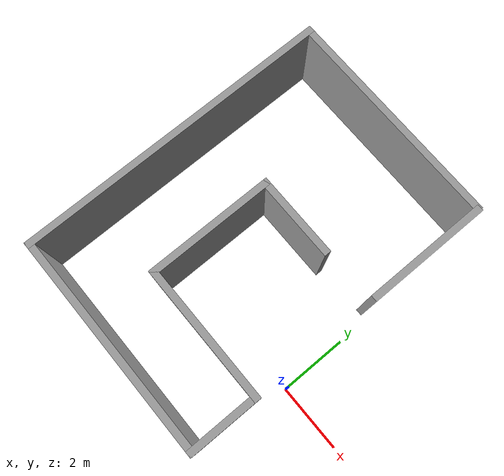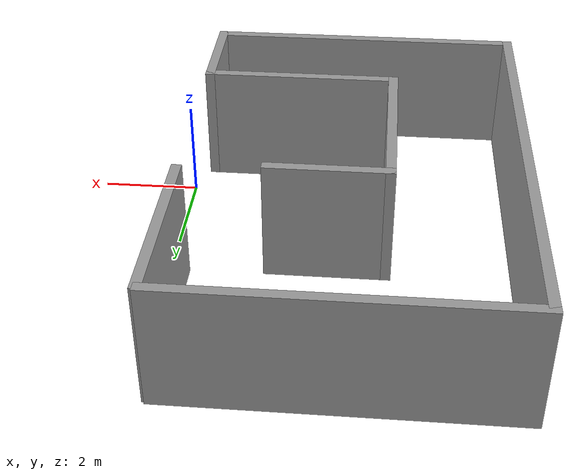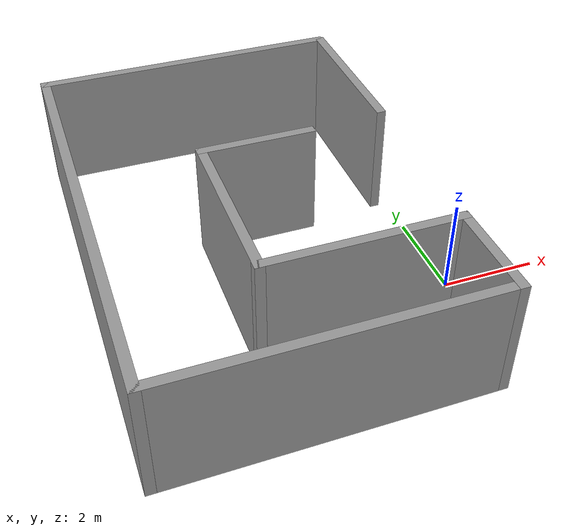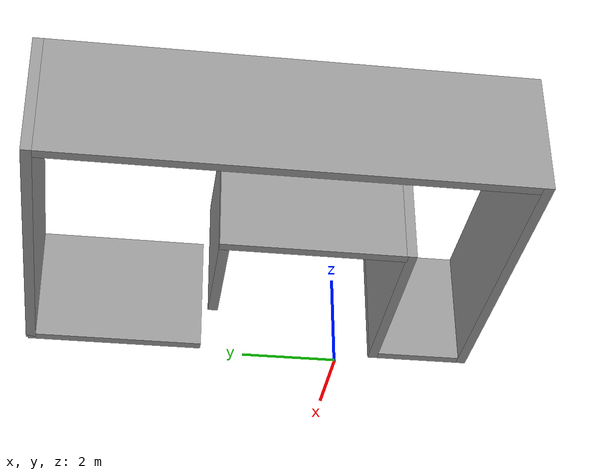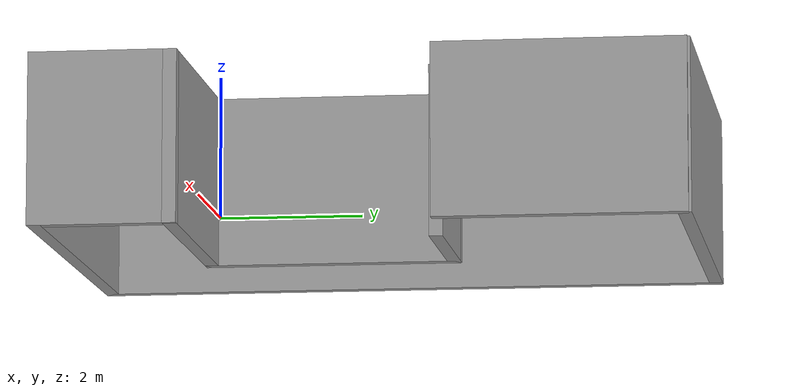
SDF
<?xml version='1.0'?>
<sdf version='1.4'>
  <model name='my_building_plan'>
    <link name='Wall_10'>
      <collision name='Wall_10_Collision'>
        <geometry>
          <box>
            <size>3.80055 0.2 2.5</size>
          </box>
        </geometry>
        <pose>0 0 1.25 0 -0 0</pose>
      </collision>
      <visual name='Wall_10_Visual'>
        <pose>0 0 1.25 0 -0 0</pose>
        <geometry>
          <box>
            <size>3.80055 0.2 2.5</size>
          </box>
        </geometry>
        <material>
          <script>
            <uri>file://media/materials/scripts/gazebo.material</uri>
            <name>Gazebo/Grey</name>
          </script>
        </material>
      </visual>
      <velocity_decay>
        <linear>0</linear>
        <angular>0</angular>
      </velocity_decay>
      <pose>-4.25321 1.01532 0 0 -0 1.5708</pose>
    </link>
    <link name='Wall_11'>
      <collision name='Wall_11_Collision'>
        <geometry>
          <box>
            <size>2.50597 0.2 2.5</size>
          </box>
        </geometry>
        <pose>0 0 1.25 0 -0 0</pose>
      </collision>
      <visual name='Wall_11_Visual'>
        <pose>0 0 1.25 0 -0 0</pose>
        <geometry>
          <box>
            <size>2.50597 0.2 2.5</size>
          </box>
        </geometry>
        <material>
          <script>
            <uri>file://media/materials/scripts/gazebo.material</uri>
            <name>Gazebo/Grey</name>
          </script>
        </material>
      </visual>
      <velocity_decay>
        <linear>0</linear>
        <angular>0</angular>
      </velocity_decay>
      <pose>-3.10023 2.81559 0 0 -0 0</pose>
    </link>
    <link name='Wall_2'>
      <collision name='Wall_2_Collision'>
        <geometry>
          <box>
            <size>3.62355 0.2 2.5</size>
          </box>
        </geometry>
        <pose>0 0 1.25 0 -0 0</pose>
      </collision>
      <visual name='Wall_2_Visual'>
        <pose>0 0 1.25 0 -0 0</pose>
        <geometry>
          <box>
            <size>3.62355 0.2 2.5</size>
          </box>
        </geometry>
        <material>
          <script>
            <uri>file://media/materials/scripts/gazebo.material</uri>
            <name>Gazebo/Grey</name>
          </script>
        </material>
      </visual>
      <velocity_decay>
        <linear>0</linear>
        <angular>0</angular>
      </velocity_decay>
      <pose>-0.280335 4.74515 0 0 -0 1.5708</pose>
    </link>
    <link name='Wall_5'>
      <collision name='Wall_5_Collision'>
        <geometry>
          <box>
            <size>6.67289 0.2 2.5</size>
          </box>
        </geometry>
        <pose>0 0 1.25 0 -0 0</pose>
      </collision>
      <visual name='Wall_5_Visual'>
        <pose>0 0 1.25 0 -0 0</pose>
        <geometry>
          <box>
            <size>6.67289 0.2 2.5</size>
          </box>
        </geometry>
        <material>
          <script>
            <uri>file://media/materials/scripts/gazebo.material</uri>
            <name>Gazebo/Grey</name>
          </script>
        </material>
      </visual>
      <velocity_decay>
        <linear>0</linear>
        <angular>0</angular>
      </velocity_decay>
      <pose>-3.56547 6.49705 0 0 -0 3.14159</pose>
    </link>
    <link name='Wall_6'>
      <collision name='Wall_6_Collision'>
        <geometry>
          <box>
            <size>9.42387 0.2 2.5</size>
          </box>
        </geometry>
        <pose>0 0 1.25 0 -0 0</pose>
      </collision>
      <visual name='Wall_6_Visual'>
        <pose>0 0 1.25 0 -0 0</pose>
        <geometry>
          <box>
            <size>9.42387 0.2 2.5</size>
          </box>
        </geometry>
        <material>
          <script>
            <uri>file://media/materials/scripts/gazebo.material</uri>
            <name>Gazebo/Grey</name>
          </script>
        </material>
      </visual>
      <velocity_decay>
        <linear>0</linear>
        <angular>0</angular>
      </velocity_decay>
      <pose>-6.80192 1.88511 0 0 0 -1.5708</pose>
    </link>
    <link name='Wall_7'>
      <collision name='Wall_7_Collision'>
        <geometry>
          <box>
            <size>6.67289 0.2 2.5</size>
          </box>
        </geometry>
        <pose>0 0 1.25 0 -0 0</pose>
      </collision>
      <visual name='Wall_7_Visual'>
        <pose>0 0 1.25 0 -0 0</pose>
        <geometry>
          <box>
            <size>6.67289 0.2 2.5</size>
          </box>
        </geometry>
        <material>
          <script>
            <uri>file://media/materials/scripts/gazebo.material</uri>
            <name>Gazebo/Grey</name>
          </script>
        </material>
      </visual>
      <velocity_decay>
        <linear>0</linear>
        <angular>0</angular>
      </velocity_decay>
      <pose>-3.56547 -2.72682 0 0 -0 0</pose>
    </link>
    //! if (false) {
    <link name='Wall_8'>
      <collision name='Wall_8_Collision'>
        <geometry>
          <box>
            <size>2.14187 0.2 2.5</size>
          </box>
        </geometry>
        <pose>0 0 1.25 0 -0 0</pose>
      </collision>
      <visual name='Wall_8_Visual'>
        <pose>0 0 1.25 0 -0 0</pose>
        <geometry>
          <box>
            <size>2.14187 0.2 2.5</size>
          </box>
        </geometry>
        <material>
          <script>
            <uri>file://media/materials/scripts/gazebo.material</uri>
            <name>Gazebo/Grey</name>
          </script>
        </material>
      </visual>
      <velocity_decay>
        <linear>0</linear>
        <angular>0</angular>
      </velocity_decay>
      <pose>-0.329024 -1.75589 0 0 -0 1.5708</pose>
    </link>
    //! }
    <link name='Wall_9'>
      <collision name='Wall_9_Collision'>
        <geometry>
          <box>
            <size>4.12419 0.2 2.5</size>
          </box>
        </geometry>
        <pose>0 0 1.25 0 -0 0</pose>
      </collision>
      <visual name='Wall_9_Visual'>
        <pose>0 0 1.25 0 -0 0</pose>
        <geometry>
          <box>
            <size>4.12419 0.2 2.5</size>
          </box>
        </geometry>
        <material>
          <script>
            <uri>file://media/materials/scripts/gazebo.material</uri>
            <name>Gazebo/Grey</name>
          </script>
        </material>
      </visual>
      <velocity_decay>
        <linear>0</linear>
        <angular>0</angular>
      </velocity_decay>
      <pose>-2.29112 -0.784955 0 0 -0 3.14159</pose>
    </link>
    <static>1</static>
  </model>
</sdf>
